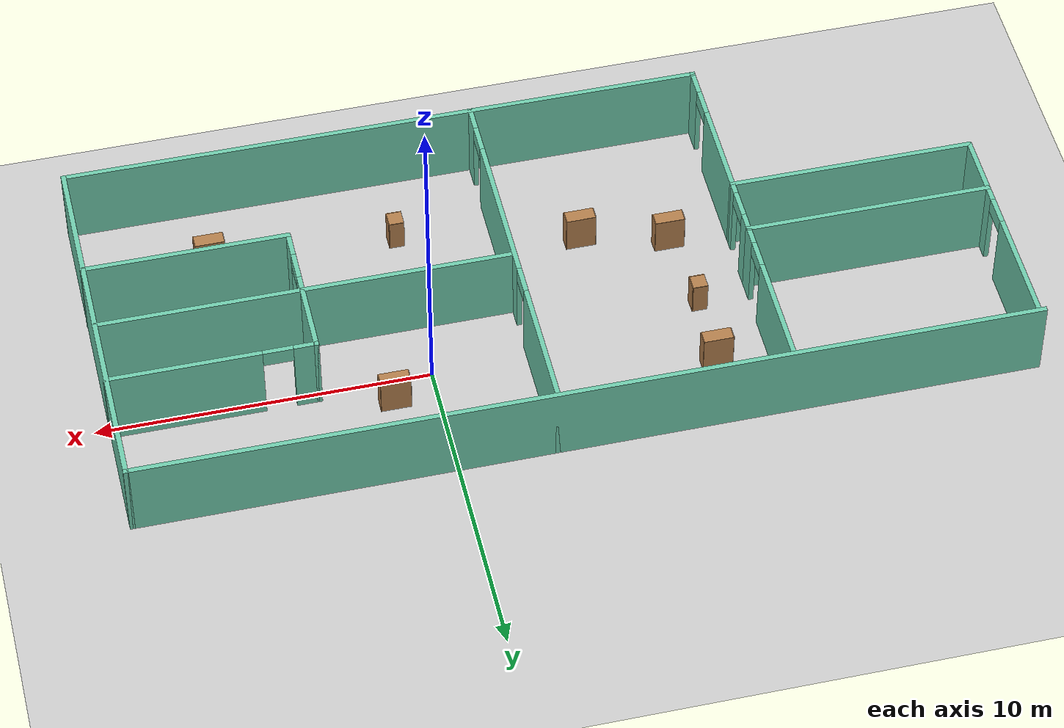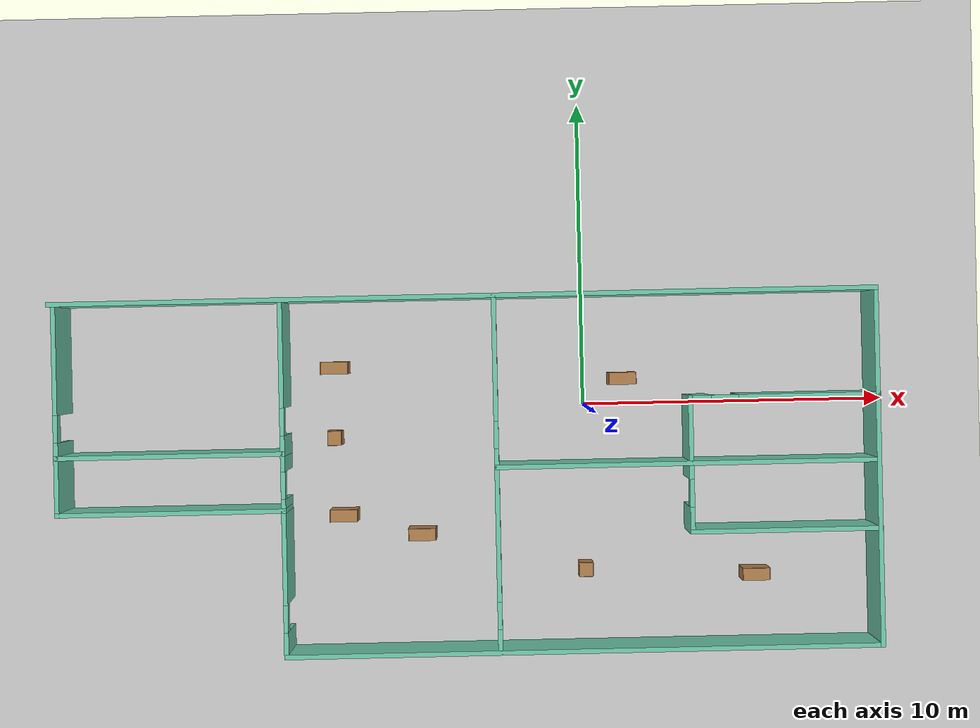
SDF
<sdf version="1.6">
 <world name="default">
  <plugin name="hello" filename="libhello.so"/>
  <light name="sun" type="directional">
   <pose>0 0 10 0 -0 0</pose>
   <diffuse>0.8 0.8 0.8 1</diffuse>
   <specular>0.2 0.2 0.2 1</specular>
   <attenuation>
    <range>1000</range>
    <constant>0.9</constant>
    <linear>0.01</linear>
    <quadratic>0.001</quadratic>
   </attenuation>
   <direction>-0.5 0.1 -0.9</direction>
  </light>
  <model name="ground_plane">
   <static>1</static>
   <link name="link">
    <collision name="collision">
     <geometry><plane><normal>0 0 1</normal><size>100 100</size></plane></geometry>
     <surface>
      <contact><collide_bitmask>65535</collide_bitmask></contact>
      <friction><ode><mu>100</mu><mu2>50</mu2></ode></friction>
     </surface>
    </collision>
    <visual name="visual">
     <cast_shadows>0</cast_shadows>
     <geometry><plane><normal>0 0 1</normal><size>100 100</size></plane></geometry>
     <material>
      <script><uri>file://media/materials/scripts/gazebo.material</uri><name>Gazebo/Grey</name></script>
     </material>
    </visual>
   </link>
  </model>
  <gravity>0 0 -9.8</gravity>
  <magnetic_field>6e-06 2.3e-05 -4.2e-05</magnetic_field>
  <atmosphere type="adiabatic"/>
  <physics name="default_physics" default="0" type="ode">
   <max_step_size>0.001</max_step_size>
   <real_time_factor>1</real_time_factor>
   <real_time_update_rate>1000</real_time_update_rate>
  </physics>
  <scene><ambient>0.4 0.4 0.4 1</ambient><background>0.7 0.7 0.7 1</background><shadows>1</shadows></scene>
  <spherical_coordinates>
   <surface_model>EARTH_WGS84</surface_model>
   <latitude_deg>0</latitude_deg>
   <longitude_deg>0</longitude_deg>
   <elevation>0</elevation>
   <heading_deg>0</heading_deg>
  </spherical_coordinates>
  <model name="building">
   <pose>-3.93061 -2.14185 0 0 -0 0</pose>
   <link name="Wall_0">
    <collision name="Wall_0_Collision">
     <geometry><box><size>27 0.15 2.5</size></box></geometry>
     <pose>0 0 1.25 0 -0 0</pose>
    </collision>
    <visual name="Wall_0_Visual">
     <pose>0 0 1.25 0 -0 0</pose>
     <geometry><box><size>27 0.15 2.5</size></box></geometry>
     <material>
      <script><uri>file://media/materials/scripts/gazebo.material</uri><name>Gazebo/Grey</name></script>
      <ambient>0.435294 0.796078 0.67451 1</ambient>
     </material>
     <meta><layer>0</layer></meta>
    </visual>
    <pose>-0.006252 5.8 0 0 -0 0</pose>
   </link>
   <link name="Wall_1">
    <collision name="Wall_1_Collision">
     <geometry><box><size>11.75 0.15 2.5</size></box></geometry>
     <pose>0 0 1.25 0 -0 0</pose>
    </collision>
    <visual name="Wall_1_Visual">
     <pose>0 0 1.25 0 -0 0</pose>
     <geometry><box><size>11.75 0.15 2.5</size></box></geometry>
     <material>
      <script><uri>file://media/materials/scripts/gazebo.material</uri><name>Gazebo/Grey</name></script>
      <ambient>0.435294 0.796078 0.67451 1</ambient>
     </material>
     <meta><layer>0</layer></meta>
    </visual>
    <pose>13.4187 0 0 0 0 -1.5708</pose>
   </link>
   <link name="Wall_11">
    <collision name="Wall_11_Collision">
     <geometry><box><size>2 0.15 2.5</size></box></geometry>
     <pose>0 0 1.25 0 -0 0</pose>
    </collision>
    <visual name="Wall_11_Visual">
     <pose>0 0 1.25 0 -0 0</pose>
     <geometry><box><size>2 0.15 2.5</size></box></geometry>
     <material>
      <script><uri>file://media/materials/scripts/gazebo.material</uri><name>Gazebo/Grey</name></script>
      <ambient>0.435294 0.796078 0.67451 1</ambient>
     </material>
     <meta><layer>0</layer></meta>
    </visual>
    <pose>-13.2813 -0.125 0 0 0 -1.5708</pose>
   </link>
   <link name="Wall_12">
    <collision name="Wall_12_Collision">
     <geometry><box><size>7.5 0.15 2.5</size></box></geometry>
     <pose>0 0 1.25 0 -0 0</pose>
    </collision>
    <visual name="Wall_12_Visual">
     <pose>0 0 1.25 0 -0 0</pose>
     <geometry><box><size>7.5 0.15 2.5</size></box></geometry>
     <material>
      <script><uri>file://media/materials/scripts/gazebo.material</uri><name>Gazebo/Grey</name></script>
      <ambient>0.435294 0.796078 0.67451 1</ambient>
     </material>
     <meta><layer>0</layer></meta>
    </visual>
    <pose>-9.60625 -1.05 0 0 -0 0</pose>
   </link>
   <link name="Wall_14">
    <collision name="Wall_14_Collision">
     <geometry><box><size>12.5 0.15 2.5</size></box></geometry>
     <pose>0 0 1.25 0 -0 0</pose>
    </collision>
    <visual name="Wall_14_Visual">
     <pose>0 0 1.25 0 -0 0</pose>
     <geometry><box><size>12.5 0.15 2.5</size></box></geometry>
     <material>
      <script><uri>file://media/materials/scripts/gazebo.material</uri><name>Gazebo/Grey</name></script>
      <ambient>0.435294 0.796078 0.67451 1</ambient>
     </material>
     <meta><layer>0</layer></meta>
    </visual>
    <pose>7.18639 0.21713 0 0 -0 0</pose>
   </link>
   <link name="Wall_16">
    <collision name="Wall_16_Collision">
     <geometry><box><size>6.25 0.15 2.5</size></box></geometry>
     <pose>0 0 1.25 0 -0 0</pose>
    </collision>
    <visual name="Wall_16_Visual">
     <pose>0 0 1.25 0 -0 0</pose>
     <geometry><box><size>6.25 0.15 2.5</size></box></geometry>
     <material>
      <script><uri>file://media/materials/scripts/gazebo.material</uri><name>Gazebo/Grey</name></script>
      <ambient>0.435294 0.796078 0.67451 1</ambient>
     </material>
     <meta><layer>0</layer></meta>
    </visual>
    <pose>10.3813 -2.00793 0 0 -0 3.14159</pose>
   </link>
   <link name="Wall_17">
    <pose>7.33125 0.167073 0 0 -0 1.5708</pose>
    <visual name="Wall_17_Visual_0">
     <pose>-1.81044 0 1.25 0 -0 0</pose>
     <geometry><box><size>0.879123 0.15 2.5</size></box></geometry>
     <material>
      <script><uri>file://media/materials/scripts/gazebo.material</uri><name>Gazebo/Grey</name></script>
      <ambient>0.435294 0.796078 0.67451 1</ambient>
     </material>
     <meta><layer>0</layer></meta>
    </visual>
    <collision name="Wall_17_Collision_0">
     <geometry><box><size>0.879123 0.15 2.5</size></box></geometry>
     <pose>-1.81044 0 1.25 0 -0 0</pose>
    </collision>
    <visual name="Wall_17_Visual_1">
     <pose>0.889561 0 1.25 0 -0 0</pose>
     <geometry><box><size>2.72088 0.15 2.5</size></box></geometry>
     <material>
      <script><uri>file://media/materials/scripts/gazebo.material</uri><name>Gazebo/Grey</name></script>
      <ambient>0.435294 0.796078 0.67451 1</ambient>
     </material>
     <meta><layer>0</layer></meta>
    </visual>
    <collision name="Wall_17_Collision_1">
     <geometry><box><size>2.72088 0.15 2.5</size></box></geometry>
     <pose>0.889561 0 1.25 0 -0 0</pose>
    </collision>
    <visual name="Wall_17_Visual_2">
     <pose>-0.920877 0 2.25 0 -0 0</pose>
     <geometry><box><size>0.9 0.15 0.5</size></box></geometry>
     <material>
      <script><uri>file://media/materials/scripts/gazebo.material</uri><name>Gazebo/Grey</name></script>
      <ambient>0.435294 0.796078 0.67451 1</ambient>
     </material>
     <meta><layer>0</layer></meta>
    </visual>
    <collision name="Wall_17_Collision_2">
     <geometry><box><size>0.9 0.15 0.5</size></box></geometry>
     <pose>-0.920877 0 2.25 0 -0 0</pose>
    </collision>
   </link>
   <link name="Wall_18">
    <pose>10.3813 2.34207 0 0 -0 0</pose>
    <visual name="Wall_18_Visual_0">
     <pose>-2.75052 0 1.25 0 -0 0</pose>
     <geometry><box><size>0.748965 0.15 2.5</size></box></geometry>
     <material>
      <script><uri>file://media/materials/scripts/gazebo.material</uri><name>Gazebo/Grey</name></script>
      <ambient>0.435294 0.796078 0.67451 1</ambient>
     </material>
     <meta><layer>0</layer></meta>
    </visual>
    <collision name="Wall_18_Collision_0">
     <geometry><box><size>0.748965 0.15 2.5</size></box></geometry>
     <pose>-2.75052 0 1.25 0 -0 0</pose>
    </collision>
    <visual name="Wall_18_Visual_1">
     <pose>0.824482 0 1.25 0 -0 0</pose>
     <geometry><box><size>4.60104 0.15 2.5</size></box></geometry>
     <material>
      <script><uri>file://media/materials/scripts/gazebo.material</uri><name>Gazebo/Grey</name></script>
      <ambient>0.435294 0.796078 0.67451 1</ambient>
     </material>
     <meta><layer>0</layer></meta>
    </visual>
    <collision name="Wall_18_Collision_1">
     <geometry><box><size>4.60104 0.15 2.5</size></box></geometry>
     <pose>0.824482 0 1.25 0 -0 0</pose>
    </collision>
    <visual name="Wall_18_Visual_2">
     <pose>-1.92603 0 2.25 0 -0 0</pose>
     <geometry><box><size>0.9 0.15 0.5</size></box></geometry>
     <material>
      <script><uri>file://media/materials/scripts/gazebo.material</uri><name>Gazebo/Grey</name></script>
      <ambient>0.435294 0.796078 0.67451 1</ambient>
     </material>
     <meta><layer>0</layer></meta>
    </visual>
    <collision name="Wall_18_Collision_2">
     <geometry><box><size>0.9 0.15 0.5</size></box></geometry>
     <pose>-1.92603 0 2.25 0 -0 0</pose>
    </collision>
   </link>
   <link name="Wall_2">
    <collision name="Wall_2_Collision">
     <geometry><box><size>19.5 0.15 2.5</size></box></geometry>
     <pose>0 0 1.25 0 -0 0</pose>
    </collision>
    <visual name="Wall_2_Visual">
     <pose>0 0 1.25 0 -0 0</pose>
     <geometry><box><size>19.5 0.15 2.5</size></box></geometry>
     <material>
      <script><uri>file://media/materials/scripts/gazebo.material</uri><name>Gazebo/Grey</name></script>
      <ambient>0.435294 0.796078 0.67451 1</ambient>
     </material>
     <meta><layer>0</layer></meta>
    </visual>
    <pose>3.74375 -5.8 0 0 -0 3.14159</pose>
   </link>
   <link name="Wall_3">
    <pose>-5.93125 -2.5 0 0 -0 1.5708</pose>
    <visual name="Wall_3_Visual_0">
     <pose>-2.94081 0 1.25 0 -0 0</pose>
     <geometry><box><size>0.868372 0.15 2.5</size></box></geometry>
     <material>
      <script><uri>file://media/materials/scripts/gazebo.material</uri><name>Gazebo/Grey</name></script>
      <ambient>0.435294 0.796078 0.67451 1</ambient>
     </material>
     <meta><layer>0</layer></meta>
    </visual>
    <collision name="Wall_3_Collision_0">
     <geometry><box><size>0.868372 0.15 2.5</size></box></geometry>
     <pose>-2.94081 0 1.25 0 -0 0</pose>
    </collision>
    <visual name="Wall_3_Visual_1">
     <pose>0.107746 0 1.25 0 -0 0</pose>
     <geometry><box><size>3.42875 0.15 2.5</size></box></geometry>
     <material>
      <script><uri>file://media/materials/scripts/gazebo.material</uri><name>Gazebo/Grey</name></script>
      <ambient>0.435294 0.796078 0.67451 1</ambient>
     </material>
     <meta><layer>0</layer></meta>
    </visual>
    <collision name="Wall_3_Collision_1">
     <geometry><box><size>3.42875 0.15 2.5</size></box></geometry>
     <pose>0.107746 0 1.25 0 -0 0</pose>
    </collision>
    <visual name="Wall_3_Visual_2">
     <pose>3.04856 0 1.25 0 -0 0</pose>
     <geometry><box><size>0.652881 0.15 2.5</size></box></geometry>
     <material>
      <script><uri>file://media/materials/scripts/gazebo.material</uri><name>Gazebo/Grey</name></script>
      <ambient>0.435294 0.796078 0.67451 1</ambient>
     </material>
     <meta><layer>0</layer></meta>
    </visual>
    <collision name="Wall_3_Collision_2">
     <geometry><box><size>0.652881 0.15 2.5</size></box></geometry>
     <pose>3.04856 0 1.25 0 -0 0</pose>
    </collision>
    <visual name="Wall_3_Visual_3">
     <pose>-2.05663 0 2.25 0 -0 0</pose>
     <geometry><box><size>0.9 0.15 0.5</size></box></geometry>
     <material>
      <script><uri>file://media/materials/scripts/gazebo.material</uri><name>Gazebo/Grey</name></script>
      <ambient>0.435294 0.796078 0.67451 1</ambient>
     </material>
     <meta><layer>0</layer></meta>
    </visual>
    <collision name="Wall_3_Collision_3">
     <geometry><box><size>0.9 0.15 0.5</size></box></geometry>
     <pose>-2.05663 0 2.25 0 -0 0</pose>
    </collision>
    <visual name="Wall_3_Visual_4">
     <pose>2.27212 0 2.25 0 -0 0</pose>
     <geometry><box><size>0.9 0.15 0.5</size></box></geometry>
     <material>
      <script><uri>file://media/materials/scripts/gazebo.material</uri><name>Gazebo/Grey</name></script>
      <ambient>0.435294 0.796078 0.67451 1</ambient>
     </material>
     <meta><layer>0</layer></meta>
    </visual>
    <collision name="Wall_3_Collision_4">
     <geometry><box><size>0.9 0.15 0.5</size></box></geometry>
     <pose>2.27212 0 2.25 0 -0 0</pose>
    </collision>
   </link>
   <link name="Wall_4">
    <collision name="Wall_4_Collision">
     <geometry><box><size>7.5 0.15 2.5</size></box></geometry>
     <pose>0 0 1.25 0 -0 0</pose>
    </collision>
    <visual name="Wall_4_Visual">
     <pose>0 0 1.25 0 -0 0</pose>
     <geometry><box><size>7.5 0.15 2.5</size></box></geometry>
     <material>
      <script><uri>file://media/materials/scripts/gazebo.material</uri><name>Gazebo/Grey</name></script>
      <ambient>0.435294 0.796078 0.67451 1</ambient>
     </material>
     <meta><layer>0</layer></meta>
    </visual>
    <pose>-9.60625 0.8 0 0 -0 3.14159</pose>
   </link>
   <link name="Wall_5">
    <pose>-13.2813 3.225 0 0 -0 1.5708</pose>
    <visual name="Wall_5_Visual_0">
     <pose>-2.21028 0 1.25 0 -0 0</pose>
     <geometry><box><size>0.579442 0.15 2.5</size></box></geometry>
     <material>
      <script><uri>file://media/materials/scripts/gazebo.material</uri><name>Gazebo/Grey</name></script>
      <ambient>0.435294 0.796078 0.67451 1</ambient>
     </material>
     <meta><layer>0</layer></meta>
    </visual>
    <collision name="Wall_5_Collision_0">
     <geometry><box><size>0.579442 0.15 2.5</size></box></geometry>
     <pose>-2.21028 0 1.25 0 -0 0</pose>
    </collision>
    <visual name="Wall_5_Visual_1">
     <pose>0.739721 0 1.25 0 -0 0</pose>
     <geometry><box><size>3.52056 0.15 2.5</size></box></geometry>
     <material>
      <script><uri>file://media/materials/scripts/gazebo.material</uri><name>Gazebo/Grey</name></script>
      <ambient>0.435294 0.796078 0.67451 1</ambient>
     </material>
     <meta><layer>0</layer></meta>
    </visual>
    <collision name="Wall_5_Collision_1">
     <geometry><box><size>3.52056 0.15 2.5</size></box></geometry>
     <pose>0.739721 0 1.25 0 -0 0</pose>
    </collision>
    <visual name="Wall_5_Visual_2">
     <pose>-1.47056 0 2.25 0 -0 0</pose>
     <geometry><box><size>0.9 0.15 0.5</size></box></geometry>
     <material>
      <script><uri>file://media/materials/scripts/gazebo.material</uri><name>Gazebo/Grey</name></script>
      <ambient>0.435294 0.796078 0.67451 1</ambient>
     </material>
     <meta><layer>0</layer></meta>
    </visual>
    <collision name="Wall_5_Collision_2">
     <geometry><box><size>0.9 0.15 0.5</size></box></geometry>
     <pose>-1.47056 0 2.25 0 -0 0</pose>
    </collision>
   </link>
   <link name="Wall_7">
    <pose>1.01139 0 0 0 0 -1.5708</pose>
    <visual name="Wall_7_Visual_0">
     <pose>-3.79699 0 1.25 0 -0 0</pose>
     <geometry><box><size>4.15602 0.15 2.5</size></box></geometry>
     <material>
      <script><uri>file://media/materials/scripts/gazebo.material</uri><name>Gazebo/Grey</name></script>
      <ambient>0.435294 0.796078 0.67451 1</ambient>
     </material>
     <meta><layer>0</layer></meta>
    </visual>
    <collision name="Wall_7_Collision_0">
     <geometry><box><size>4.15602 0.15 2.5</size></box></geometry>
     <pose>-3.79699 0 1.25 0 -0 0</pose>
    </collision>
    <visual name="Wall_7_Visual_1">
     <pose>1.66405 0 1.25 0 -0 0</pose>
     <geometry><box><size>4.96606 0.15 2.5</size></box></geometry>
     <material>
      <script><uri>file://media/materials/scripts/gazebo.material</uri><name>Gazebo/Grey</name></script>
      <ambient>0.435294 0.796078 0.67451 1</ambient>
     </material>
     <meta><layer>0</layer></meta>
    </visual>
    <collision name="Wall_7_Collision_1">
     <geometry><box><size>4.96606 0.15 2.5</size></box></geometry>
     <pose>1.66405 0 1.25 0 -0 0</pose>
    </collision>
    <visual name="Wall_7_Visual_2">
     <pose>5.46104 0 1.25 0 -0 0</pose>
     <geometry><box><size>0.827917 0.15 2.5</size></box></geometry>
     <material>
      <script><uri>file://media/materials/scripts/gazebo.material</uri><name>Gazebo/Grey</name></script>
      <ambient>0.435294 0.796078 0.67451 1</ambient>
     </material>
     <meta><layer>0</layer></meta>
    </visual>
    <collision name="Wall_7_Collision_2">
     <geometry><box><size>0.827917 0.15 2.5</size></box></geometry>
     <pose>5.46104 0 1.25 0 -0 0</pose>
    </collision>
    <visual name="Wall_7_Visual_3">
     <pose>-1.26897 0 2.25 0 -0 0</pose>
     <geometry><box><size>0.9 0.15 0.5</size></box></geometry>
     <material>
      <script><uri>file://media/materials/scripts/gazebo.material</uri><name>Gazebo/Grey</name></script>
      <ambient>0.435294 0.796078 0.67451 1</ambient>
     </material>
     <meta><layer>0</layer></meta>
    </visual>
    <collision name="Wall_7_Collision_3">
     <geometry><box><size>0.9 0.15 0.5</size></box></geometry>
     <pose>-1.26897 0 2.25 0 -0 0</pose>
    </collision>
    <visual name="Wall_7_Visual_4">
     <pose>4.59708 0 2.25 0 -0 0</pose>
     <geometry><box><size>0.9 0.15 0.5</size></box></geometry>
     <material>
      <script><uri>file://media/materials/scripts/gazebo.material</uri><name>Gazebo/Grey</name></script>
      <ambient>0.435294 0.796078 0.67451 1</ambient>
     </material>
     <meta><layer>0</layer></meta>
    </visual>
    <collision name="Wall_7_Collision_4">
     <geometry><box><size>0.9 0.15 0.5</size></box></geometry>
     <pose>4.59708 0 2.25 0 -0 0</pose>
    </collision>
   </link>
   <link name="Wall_9">
    <pose>-5.93125 3.225 0 0 -0 1.5708</pose>
    <visual name="Wall_9_Visual_0">
     <pose>-2.16982 0 1.25 0 -0 0</pose>
     <geometry><box><size>0.660353 0.15 2.5</size></box></geometry>
     <material>
      <script><uri>file://media/materials/scripts/gazebo.material</uri><name>Gazebo/Grey</name></script>
      <ambient>0.435294 0.796078 0.67451 1</ambient>
     </material>
     <meta><layer>0</layer></meta>
    </visual>
    <collision name="Wall_9_Collision_0">
     <geometry><box><size>0.660353 0.15 2.5</size></box></geometry>
     <pose>-2.16982 0 1.25 0 -0 0</pose>
    </collision>
    <visual name="Wall_9_Visual_1">
     <pose>0.780177 0 1.25 0 -0 0</pose>
     <geometry><box><size>3.43965 0.15 2.5</size></box></geometry>
     <material>
      <script><uri>file://media/materials/scripts/gazebo.material</uri><name>Gazebo/Grey</name></script>
      <ambient>0.435294 0.796078 0.67451 1</ambient>
     </material>
     <meta><layer>0</layer></meta>
    </visual>
    <collision name="Wall_9_Collision_1">
     <geometry><box><size>3.43965 0.15 2.5</size></box></geometry>
     <pose>0.780177 0 1.25 0 -0 0</pose>
    </collision>
    <visual name="Wall_9_Visual_2">
     <pose>-1.38965 0 2.25 0 -0 0</pose>
     <geometry><box><size>0.9 0.15 0.5</size></box></geometry>
     <material>
      <script><uri>file://media/materials/scripts/gazebo.material</uri><name>Gazebo/Grey</name></script>
      <ambient>0.435294 0.796078 0.67451 1</ambient>
     </material>
     <meta><layer>0</layer></meta>
    </visual>
    <collision name="Wall_9_Collision_2">
     <geometry><box><size>0.9 0.15 0.5</size></box></geometry>
     <pose>-1.38965 0 2.25 0 -0 0</pose>
    </collision>
   </link>
   <static>1</static>
  </model>
  <model name="cabinet">
   <static>1</static>
   <link name="cabinet_bottom_plate">
    <inertial>
     <pose>0 0 -1 0 -0 0</pose>
     <inertia><ixx>2.05</ixx><ixy>0</ixy><ixz>0</ixz><iyy>2.05</iyy><iyz>0</iyz><izz>2.05</izz></inertia>
     <mass>25</mass>
    </inertial>
    <collision name="cabinet_bottom_plate_geom">
     <pose>0 0 0.01 0 -0 0</pose>
     <geometry><box><size>0.45 0.45 0.02</size></box></geometry>
    </collision>
    <visual name="cabinet_bottom_plate_geom_visual">
     <pose>0 0 0.01 0 -0 0</pose>
     <geometry><box><size>0.45 0.45 0.02</size></box></geometry>
     <material>
      <script><uri>file://media/materials/scripts/gazebo.material</uri><name>Gazebo/Wood</name></script>
     </material>
    </visual>
    <collision name="cabinet_bottom_plate_geom_cabinet_back_plate">
     <pose>0.235 0 0.51 0 -0 0</pose>
     <geometry><box><size>0.02 0.45 1.02</size></box></geometry>
    </collision>
    <visual name="cabinet_bottom_plate_geom_cabinet_back_plate_visual">
     <pose>0.235 0 0.51 0 -0 0</pose>
     <geometry><box><size>0.02 0.45 1.02</size></box></geometry>
     <material>
      <script><uri>file://media/materials/scripts/gazebo.material</uri><name>Gazebo/Wood</name></script>
     </material>
    </visual>
    <collision name="cabinet_bottom_plate_geom_cabinet_left_plate">
     <pose>0 0.235 0.51 0 -0 0</pose>
     <geometry><box><size>0.45 0.02 1.02</size></box></geometry>
    </collision>
    <visual name="cabinet_bottom_plate_geom_cabinet_left_plate_visual">
     <pose>0 0.235 0.51 0 -0 0</pose>
     <geometry><box><size>0.45 0.02 1.02</size></box></geometry>
     <material>
      <script><uri>file://media/materials/scripts/gazebo.material</uri><name>Gazebo/Wood</name></script>
     </material>
    </visual>
    <collision name="cabinet_bottom_plate_geom_cabinet_middle_plate">
     <pose>0 0 0.51 0 -0 0</pose>
     <geometry><box><size>0.45 0.45 0.02</size></box></geometry>
    </collision>
    <visual name="cabinet_bottom_plate_geom_cabinet_middle_plate_visual">
     <pose>0 0 0.51 0 -0 0</pose>
     <geometry><box><size>0.45 0.45 0.02</size></box></geometry>
     <material>
      <script><uri>file://media/materials/scripts/gazebo.material</uri><name>Gazebo/Wood</name></script>
     </material>
    </visual>
    <collision name="cabinet_bottom_plate_geom_cabinet_right_plate">
     <pose>0 -0.235 0.51 0 -0 0</pose>
     <geometry><box><size>0.45 0.02 1.02</size></box></geometry>
    </collision>
    <visual name="cabinet_bottom_plate_geom_cabinet_right_plate_visual">
     <pose>0 -0.235 0.51 0 -0 0</pose>
     <geometry><box><size>0.45 0.02 1.02</size></box></geometry>
     <material>
      <script><uri>file://media/materials/scripts/gazebo.material</uri><name>Gazebo/Wood</name></script>
     </material>
    </visual>
    <collision name="cabinet_bottom_plate_geom_cabinet_top_plate">
     <pose>0 0 1.01 0 -0 0</pose>
     <geometry><box><size>0.45 0.45 0.02</size></box></geometry>
    </collision>
    <visual name="cabinet_bottom_plate_geom_cabinet_top_plate_visual">
     <pose>0 0 1.01 0 -0 0</pose>
     <geometry><box><size>0.45 0.45 0.02</size></box></geometry>
     <material>
      <script><uri>file://media/materials/scripts/gazebo.material</uri><name>Gazebo/Wood</name></script>
     </material>
    </visual>
   </link>
   <pose>-8.27989 -0.925247 0 0 -0 0</pose>
  </model>
  <model name="cabinet_0">
   <static>1</static>
   <link name="cabinet_bottom_plate">
    <inertial>
     <pose>0 0 -1 0 -0 0</pose>
     <inertia><ixx>2.05</ixx><ixy>0</ixy><ixz>0</ixz><iyy>2.05</iyy><iyz>0</iyz><izz>2.05</izz></inertia>
     <mass>25</mass>
    </inertial>
    <collision name="cabinet_bottom_plate_geom">
     <pose>0 0 0.01 0 -0 0</pose>
     <geometry><box><size>0.45 0.45 0.02</size></box></geometry>
    </collision>
    <visual name="cabinet_bottom_plate_geom_visual">
     <pose>0 0 0.01 0 -0 0</pose>
     <geometry><box><size>0.45 0.45 0.02</size></box></geometry>
     <material>
      <script><uri>file://media/materials/scripts/gazebo.material</uri><name>Gazebo/Wood</name></script>
     </material>
    </visual>
    <collision name="cabinet_bottom_plate_geom_cabinet_back_plate">
     <pose>0.235 0 0.51 0 -0 0</pose>
     <geometry><box><size>0.02 0.45 1.02</size></box></geometry>
    </collision>
    <visual name="cabinet_bottom_plate_geom_cabinet_back_plate_visual">
     <pose>0.235 0 0.51 0 -0 0</pose>
     <geometry><box><size>0.02 0.45 1.02</size></box></geometry>
     <material>
      <script><uri>file://media/materials/scripts/gazebo.material</uri><name>Gazebo/Wood</name></script>
     </material>
    </visual>
    <collision name="cabinet_bottom_plate_geom_cabinet_left_plate">
     <pose>0 0.235 0.51 0 -0 0</pose>
     <geometry><box><size>0.45 0.02 1.02</size></box></geometry>
    </collision>
    <visual name="cabinet_bottom_plate_geom_cabinet_left_plate_visual">
     <pose>0 0.235 0.51 0 -0 0</pose>
     <geometry><box><size>0.45 0.02 1.02</size></box></geometry>
     <material>
      <script><uri>file://media/materials/scripts/gazebo.material</uri><name>Gazebo/Wood</name></script>
     </material>
    </visual>
    <collision name="cabinet_bottom_plate_geom_cabinet_middle_plate">
     <pose>0 0 0.51 0 -0 0</pose>
     <geometry><box><size>0.45 0.45 0.02</size></box></geometry>
    </collision>
    <visual name="cabinet_bottom_plate_geom_cabinet_middle_plate_visual">
     <pose>0 0 0.51 0 -0 0</pose>
     <geometry><box><size>0.45 0.45 0.02</size></box></geometry>
     <material>
      <script><uri>file://media/materials/scripts/gazebo.material</uri><name>Gazebo/Wood</name></script>
     </material>
    </visual>
    <collision name="cabinet_bottom_plate_geom_cabinet_right_plate">
     <pose>0 -0.235 0.51 0 -0 0</pose>
     <geometry><box><size>0.45 0.02 1.02</size></box></geometry>
    </collision>
    <visual name="cabinet_bottom_plate_geom_cabinet_right_plate_visual">
     <pose>0 -0.235 0.51 0 -0 0</pose>
     <geometry><box><size>0.45 0.02 1.02</size></box></geometry>
     <material>
      <script><uri>file://media/materials/scripts/gazebo.material</uri><name>Gazebo/Wood</name></script>
     </material>
    </visual>
    <collision name="cabinet_bottom_plate_geom_cabinet_top_plate">
     <pose>0 0 1.01 0 -0 0</pose>
     <geometry><box><size>0.45 0.45 0.02</size></box></geometry>
    </collision>
    <visual name="cabinet_bottom_plate_geom_cabinet_top_plate_visual">
     <pose>0 0 1.01 0 -0 0</pose>
     <geometry><box><size>0.45 0.45 0.02</size></box></geometry>
     <material>
      <script><uri>file://media/materials/scripts/gazebo.material</uri><name>Gazebo/Wood</name></script>
     </material>
    </visual>
   </link>
   <pose>-0.038522 -5.45618 0 0 -0 0</pose>
  </model>
  <model name="bookshelf">
   <static>1</static>
   <link name="link">
    <inertial><mass>1</mass></inertial>
    <collision name="back">
     <pose>0 0.005 0.6 0 -0 0</pose>
     <geometry><box><size>0.9 0.01 1.2</size></box></geometry>
    </collision>
    <visual name="visual1">
     <pose>0 0.005 0.6 0 -0 0</pose>
     <geometry><box><size>0.9 0.01 1.2</size></box></geometry>
     <material>
      <script><uri>file://media/materials/scripts/gazebo.material</uri><name>Gazebo/Wood</name></script>
     </material>
    </visual>
    <collision name="left_side">
     <pose>0.45 -0.195 0.6 0 -0 0</pose>
     <geometry><box><size>0.02 0.4 1.2</size></box></geometry>
    </collision>
    <visual name="visual2">
     <pose>0.45 -0.195 0.6 0 -0 0</pose>
     <geometry><box><size>0.02 0.4 1.2</size></box></geometry>
     <material>
      <script><uri>file://media/materials/scripts/gazebo.material</uri><name>Gazebo/Wood</name></script>
     </material>
    </visual>
    <collision name="right_side">
     <pose>-0.45 -0.195 0.6 0 -0 0</pose>
     <geometry><box><size>0.02 0.4 1.2</size></box></geometry>
    </collision>
    <visual name="visual3">
     <pose>-0.45 -0.195 0.6 0 -0 0</pose>
     <geometry><box><size>0.02 0.4 1.2</size></box></geometry>
     <material>
      <script><uri>file://media/materials/scripts/gazebo.material</uri><name>Gazebo/Wood</name></script>
     </material>
    </visual>
    <collision name="bottom">
     <pose>0 -0.195 0.03 0 -0 0</pose>
     <geometry><box><size>0.88 0.4 0.06</size></box></geometry>
    </collision>
    <visual name="visual4">
     <pose>0 -0.195 0.03 0 -0 0</pose>
     <geometry><box><size>0.88 0.4 0.06</size></box></geometry>
     <material>
      <script><uri>file://media/materials/scripts/gazebo.material</uri><name>Gazebo/Wood</name></script>
     </material>
    </visual>
    <collision name="top">
     <pose>0 -0.195 1.19 0 -0 0</pose>
     <geometry><box><size>0.88 0.4 0.02</size></box></geometry>
    </collision>
    <visual name="visual5">
     <pose>0 -0.195 1.19 0 -0 0</pose>
     <geometry><box><size>0.88 0.4 0.02</size></box></geometry>
     <material>
      <script><uri>file://media/materials/scripts/gazebo.material</uri><name>Gazebo/Wood</name></script>
     </material>
    </visual>
    <collision name="low_shelf">
     <pose>0 -0.195 0.43 0 -0 0</pose>
     <geometry><box><size>0.88 0.4 0.02</size></box></geometry>
    </collision>
    <visual name="visual6">
     <pose>0 -0.195 0.43 0 -0 0</pose>
     <geometry><box><size>0.88 0.4 0.02</size></box></geometry>
     <material>
      <script><uri>file://media/materials/scripts/gazebo.material</uri><name>Gazebo/Wood</name></script>
     </material>
    </visual>
    <collision name="high_shelf">
     <pose>0 -0.195 0.8 0 -0 0</pose>
     <geometry><box><size>0.88 0.4 0.02</size></box></geometry>
    </collision>
    <visual name="visual7">
     <pose>0 -0.195 0.8 0 -0 0</pose>
     <geometry><box><size>0.88 0.4 0.02</size></box></geometry>
     <material>
      <script><uri>file://media/materials/scripts/gazebo.material</uri><name>Gazebo/Wood</name></script>
     </material>
    </visual>
   </link>
   <pose>-5.43379 -3.9719 0 0 -0 0</pose>
  </model>
  <model name="bookshelf_clone">
   <static>1</static>
   <link name="link">
    <inertial><mass>1</mass></inertial>
    <collision name="back">
     <pose>0 0.005 0.6 0 -0 0</pose>
     <geometry><box><size>0.9 0.01 1.2</size></box></geometry>
    </collision>
    <visual name="visual1">
     <pose>0 0.005 0.6 0 -0 0</pose>
     <geometry><box><size>0.9 0.01 1.2</size></box></geometry>
     <material>
      <script><uri>file://media/materials/scripts/gazebo.material</uri><name>Gazebo/Wood</name></script>
     </material>
    </visual>
    <collision name="left_side">
     <pose>0.45 -0.195 0.6 0 -0 0</pose>
     <geometry><box><size>0.02 0.4 1.2</size></box></geometry>
    </collision>
    <visual name="visual2">
     <pose>0.45 -0.195 0.6 0 -0 0</pose>
     <geometry><box><size>0.02 0.4 1.2</size></box></geometry>
     <material>
      <script><uri>file://media/materials/scripts/gazebo.material</uri><name>Gazebo/Wood</name></script>
     </material>
    </visual>
    <collision name="right_side">
     <pose>-0.45 -0.195 0.6 0 -0 0</pose>
     <geometry><box><size>0.02 0.4 1.2</size></box></geometry>
    </collision>
    <visual name="visual3">
     <pose>-0.45 -0.195 0.6 0 -0 0</pose>
     <geometry><box><size>0.02 0.4 1.2</size></box></geometry>
     <material>
      <script><uri>file://media/materials/scripts/gazebo.material</uri><name>Gazebo/Wood</name></script>
     </material>
    </visual>
    <collision name="bottom">
     <pose>0 -0.195 0.03 0 -0 0</pose>
     <geometry><box><size>0.88 0.4 0.06</size></box></geometry>
    </collision>
    <visual name="visual4">
     <pose>0 -0.195 0.03 0 -0 0</pose>
     <geometry><box><size>0.88 0.4 0.06</size></box></geometry>
     <material>
      <script><uri>file://media/materials/scripts/gazebo.material</uri><name>Gazebo/Wood</name></script>
     </material>
    </visual>
    <collision name="top">
     <pose>0 -0.195 1.19 0 -0 0</pose>
     <geometry><box><size>0.88 0.4 0.02</size></box></geometry>
    </collision>
    <visual name="visual5">
     <pose>0 -0.195 1.19 0 -0 0</pose>
     <geometry><box><size>0.88 0.4 0.02</size></box></geometry>
     <material>
      <script><uri>file://media/materials/scripts/gazebo.material</uri><name>Gazebo/Wood</name></script>
     </material>
    </visual>
    <collision name="low_shelf">
     <pose>0 -0.195 0.43 0 -0 0</pose>
     <geometry><box><size>0.88 0.4 0.02</size></box></geometry>
    </collision>
    <visual name="visual6">
     <pose>0 -0.195 0.43 0 -0 0</pose>
     <geometry><box><size>0.88 0.4 0.02</size></box></geometry>
     <material>
      <script><uri>file://media/materials/scripts/gazebo.material</uri><name>Gazebo/Wood</name></script>
     </material>
    </visual>
    <collision name="high_shelf">
     <pose>0 -0.195 0.8 0 -0 0</pose>
     <geometry><box><size>0.88 0.4 0.02</size></box></geometry>
    </collision>
    <visual name="visual7">
     <pose>0 -0.195 0.8 0 -0 0</pose>
     <geometry><box><size>0.88 0.4 0.02</size></box></geometry>
     <material>
      <script><uri>file://media/materials/scripts/gazebo.material</uri><name>Gazebo/Wood</name></script>
     </material>
    </visual>
   </link>
   <pose>1.28551 1.0485 0 0 -0 0</pose>
  </model>
  <model name="bookshelf_clone_0">
   <static>1</static>
   <link name="link">
    <inertial><mass>1</mass></inertial>
    <collision name="back">
     <pose>0 0.005 0.6 0 -0 0</pose>
     <geometry><box><size>0.9 0.01 1.2</size></box></geometry>
    </collision>
    <visual name="visual1">
     <pose>0 0.005 0.6 0 -0 0</pose>
     <geometry><box><size>0.9 0.01 1.2</size></box></geometry>
     <material>
      <script><uri>file://media/materials/scripts/gazebo.material</uri><name>Gazebo/Wood</name></script>
     </material>
    </visual>
    <collision name="left_side">
     <pose>0.45 -0.195 0.6 0 -0 0</pose>
     <geometry><box><size>0.02 0.4 1.2</size></box></geometry>
    </collision>
    <visual name="visual2">
     <pose>0.45 -0.195 0.6 0 -0 0</pose>
     <geometry><box><size>0.02 0.4 1.2</size></box></geometry>
     <material>
      <script><uri>file://media/materials/scripts/gazebo.material</uri><name>Gazebo/Wood</name></script>
     </material>
    </visual>
    <collision name="right_side">
     <pose>-0.45 -0.195 0.6 0 -0 0</pose>
     <geometry><box><size>0.02 0.4 1.2</size></box></geometry>
    </collision>
    <visual name="visual3">
     <pose>-0.45 -0.195 0.6 0 -0 0</pose>
     <geometry><box><size>0.02 0.4 1.2</size></box></geometry>
     <material>
      <script><uri>file://media/materials/scripts/gazebo.material</uri><name>Gazebo/Wood</name></script>
     </material>
    </visual>
    <collision name="bottom">
     <pose>0 -0.195 0.03 0 -0 0</pose>
     <geometry><box><size>0.88 0.4 0.06</size></box></geometry>
    </collision>
    <visual name="visual4">
     <pose>0 -0.195 0.03 0 -0 0</pose>
     <geometry><box><size>0.88 0.4 0.06</size></box></geometry>
     <material>
      <script><uri>file://media/materials/scripts/gazebo.material</uri><name>Gazebo/Wood</name></script>
     </material>
    </visual>
    <collision name="top">
     <pose>0 -0.195 1.19 0 -0 0</pose>
     <geometry><box><size>0.88 0.4 0.02</size></box></geometry>
    </collision>
    <visual name="visual5">
     <pose>0 -0.195 1.19 0 -0 0</pose>
     <geometry><box><size>0.88 0.4 0.02</size></box></geometry>
     <material>
      <script><uri>file://media/materials/scripts/gazebo.material</uri><name>Gazebo/Wood</name></script>
     </material>
    </visual>
    <collision name="low_shelf">
     <pose>0 -0.195 0.43 0 -0 0</pose>
     <geometry><box><size>0.88 0.4 0.02</size></box></geometry>
    </collision>
    <visual name="visual6">
     <pose>0 -0.195 0.43 0 -0 0</pose>
     <geometry><box><size>0.88 0.4 0.02</size></box></geometry>
     <material>
      <script><uri>file://media/materials/scripts/gazebo.material</uri><name>Gazebo/Wood</name></script>
     </material>
    </visual>
    <collision name="high_shelf">
     <pose>0 -0.195 0.8 0 -0 0</pose>
     <geometry><box><size>0.88 0.4 0.02</size></box></geometry>
    </collision>
    <visual name="visual7">
     <pose>0 -0.195 0.8 0 -0 0</pose>
     <geometry><box><size>0.88 0.4 0.02</size></box></geometry>
     <material>
      <script><uri>file://media/materials/scripts/gazebo.material</uri><name>Gazebo/Wood</name></script>
     </material>
    </visual>
   </link>
   <pose>-8.01203 -3.29652 0 0 -0 0</pose>
  </model>
  <model name="bookshelf_clone_1">
   <static>1</static>
   <link name="link">
    <inertial><mass>1</mass></inertial>
    <collision name="back">
     <pose>0 0.005 0.6 0 -0 0</pose>
     <geometry><box><size>0.9 0.01 1.2</size></box></geometry>
    </collision>
    <visual name="visual1">
     <pose>0 0.005 0.6 0 -0 0</pose>
     <geometry><box><size>0.9 0.01 1.2</size></box></geometry>
     <material>
      <script><uri>file://media/materials/scripts/gazebo.material</uri><name>Gazebo/Wood</name></script>
     </material>
    </visual>
    <collision name="left_side">
     <pose>0.45 -0.195 0.6 0 -0 0</pose>
     <geometry><box><size>0.02 0.4 1.2</size></box></geometry>
    </collision>
    <visual name="visual2">
     <pose>0.45 -0.195 0.6 0 -0 0</pose>
     <geometry><box><size>0.02 0.4 1.2</size></box></geometry>
     <material>
      <script><uri>file://media/materials/scripts/gazebo.material</uri><name>Gazebo/Wood</name></script>
     </material>
    </visual>
    <collision name="right_side">
     <pose>-0.45 -0.195 0.6 0 -0 0</pose>
     <geometry><box><size>0.02 0.4 1.2</size></box></geometry>
    </collision>
    <visual name="visual3">
     <pose>-0.45 -0.195 0.6 0 -0 0</pose>
     <geometry><box><size>0.02 0.4 1.2</size></box></geometry>
     <material>
      <script><uri>file://media/materials/scripts/gazebo.material</uri><name>Gazebo/Wood</name></script>
     </material>
    </visual>
    <collision name="bottom">
     <pose>0 -0.195 0.03 0 -0 0</pose>
     <geometry><box><size>0.88 0.4 0.06</size></box></geometry>
    </collision>
    <visual name="visual4">
     <pose>0 -0.195 0.03 0 -0 0</pose>
     <geometry><box><size>0.88 0.4 0.06</size></box></geometry>
     <material>
      <script><uri>file://media/materials/scripts/gazebo.material</uri><name>Gazebo/Wood</name></script>
     </material>
    </visual>
    <collision name="top">
     <pose>0 -0.195 1.19 0 -0 0</pose>
     <geometry><box><size>0.88 0.4 0.02</size></box></geometry>
    </collision>
    <visual name="visual5">
     <pose>0 -0.195 1.19 0 -0 0</pose>
     <geometry><box><size>0.88 0.4 0.02</size></box></geometry>
     <material>
      <script><uri>file://media/materials/scripts/gazebo.material</uri><name>Gazebo/Wood</name></script>
     </material>
    </visual>
    <collision name="low_shelf">
     <pose>0 -0.195 0.43 0 -0 0</pose>
     <geometry><box><size>0.88 0.4 0.02</size></box></geometry>
    </collision>
    <visual name="visual6">
     <pose>0 -0.195 0.43 0 -0 0</pose>
     <geometry><box><size>0.88 0.4 0.02</size></box></geometry>
     <material>
      <script><uri>file://media/materials/scripts/gazebo.material</uri><name>Gazebo/Wood</name></script>
     </material>
    </visual>
    <collision name="high_shelf">
     <pose>0 -0.195 0.8 0 -0 0</pose>
     <geometry><box><size>0.88 0.4 0.02</size></box></geometry>
    </collision>
    <visual name="visual7">
     <pose>0 -0.195 0.8 0 -0 0</pose>
     <geometry><box><size>0.88 0.4 0.02</size></box></geometry>
     <material>
      <script><uri>file://media/materials/scripts/gazebo.material</uri><name>Gazebo/Wood</name></script>
     </material>
    </visual>
   </link>
   <pose>5.57964 -5.5117 0 0 -0 0</pose>
  </model>
  <model name="bookshelf_clone_2">
   <static>1</static>
   <link name="link">
    <inertial><mass>1</mass></inertial>
    <collision name="back">
     <pose>0 0.005 0.6 0 -0 0</pose>
     <geometry><box><size>0.9 0.01 1.2</size></box></geometry>
    </collision>
    <visual name="visual1">
     <pose>0 0.005 0.6 0 -0 0</pose>
     <geometry><box><size>0.9 0.01 1.2</size></box></geometry>
     <material>
      <script><uri>file://media/materials/scripts/gazebo.material</uri><name>Gazebo/Wood</name></script>
     </material>
    </visual>
    <collision name="left_side">
     <pose>0.45 -0.195 0.6 0 -0 0</pose>
     <geometry><box><size>0.02 0.4 1.2</size></box></geometry>
    </collision>
    <visual name="visual2">
     <pose>0.45 -0.195 0.6 0 -0 0</pose>
     <geometry><box><size>0.02 0.4 1.2</size></box></geometry>
     <material>
      <script><uri>file://media/materials/scripts/gazebo.material</uri><name>Gazebo/Wood</name></script>
     </material>
    </visual>
    <collision name="right_side">
     <pose>-0.45 -0.195 0.6 0 -0 0</pose>
     <geometry><box><size>0.02 0.4 1.2</size></box></geometry>
    </collision>
    <visual name="visual3">
     <pose>-0.45 -0.195 0.6 0 -0 0</pose>
     <geometry><box><size>0.02 0.4 1.2</size></box></geometry>
     <material>
      <script><uri>file://media/materials/scripts/gazebo.material</uri><name>Gazebo/Wood</name></script>
     </material>
    </visual>
    <collision name="bottom">
     <pose>0 -0.195 0.03 0 -0 0</pose>
     <geometry><box><size>0.88 0.4 0.06</size></box></geometry>
    </collision>
    <visual name="visual4">
     <pose>0 -0.195 0.03 0 -0 0</pose>
     <geometry><box><size>0.88 0.4 0.06</size></box></geometry>
     <material>
      <script><uri>file://media/materials/scripts/gazebo.material</uri><name>Gazebo/Wood</name></script>
     </material>
    </visual>
    <collision name="top">
     <pose>0 -0.195 1.19 0 -0 0</pose>
     <geometry><box><size>0.88 0.4 0.02</size></box></geometry>
    </collision>
    <visual name="visual5">
     <pose>0 -0.195 1.19 0 -0 0</pose>
     <geometry><box><size>0.88 0.4 0.02</size></box></geometry>
     <material>
      <script><uri>file://media/materials/scripts/gazebo.material</uri><name>Gazebo/Wood</name></script>
     </material>
    </visual>
    <collision name="low_shelf">
     <pose>0 -0.195 0.43 0 -0 0</pose>
     <geometry><box><size>0.88 0.4 0.02</size></box></geometry>
    </collision>
    <visual name="visual6">
     <pose>0 -0.195 0.43 0 -0 0</pose>
     <geometry><box><size>0.88 0.4 0.02</size></box></geometry>
     <material>
      <script><uri>file://media/materials/scripts/gazebo.material</uri><name>Gazebo/Wood</name></script>
     </material>
    </visual>
    <collision name="high_shelf">
     <pose>0 -0.195 0.8 0 -0 0</pose>
     <geometry><box><size>0.88 0.4 0.02</size></box></geometry>
    </collision>
    <visual name="visual7">
     <pose>0 -0.195 0.8 0 -0 0</pose>
     <geometry><box><size>0.88 0.4 0.02</size></box></geometry>
     <material>
      <script><uri>file://media/materials/scripts/gazebo.material</uri><name>Gazebo/Wood</name></script>
     </material>
    </visual>
   </link>
   <pose>-8.23419 1.59123 0 0 -0 0</pose>
  </model>
 </world>
</sdf>
